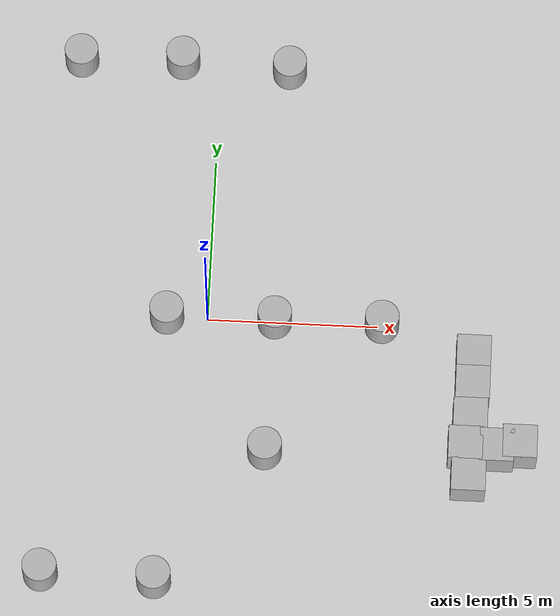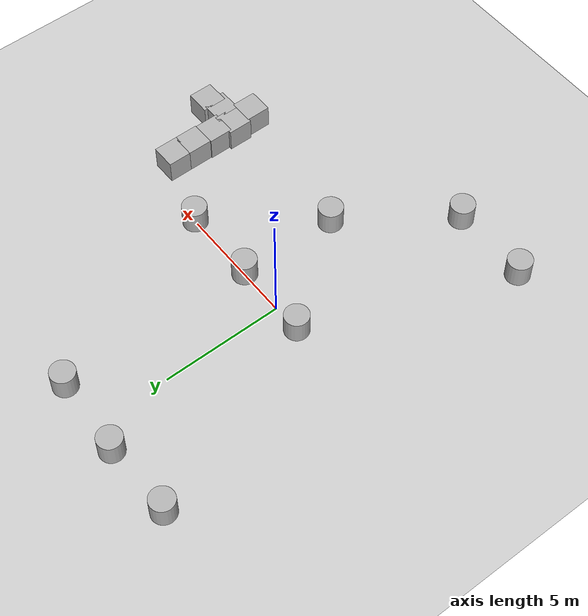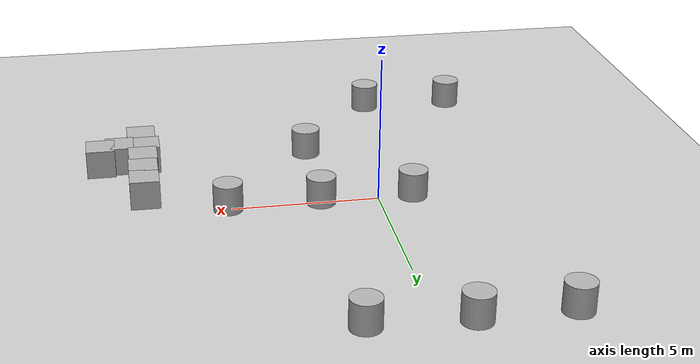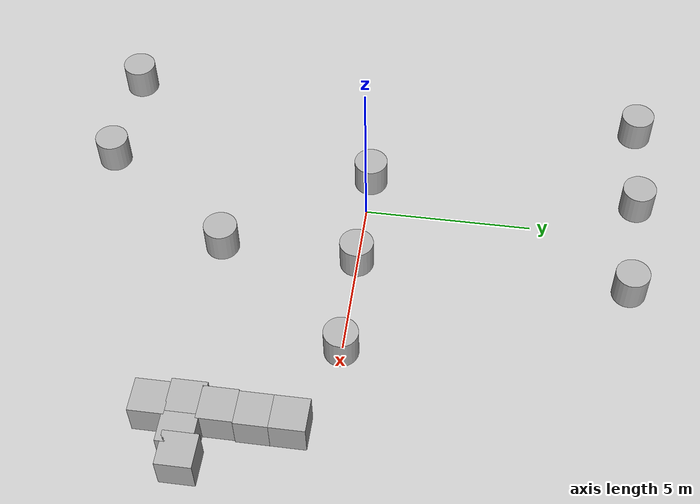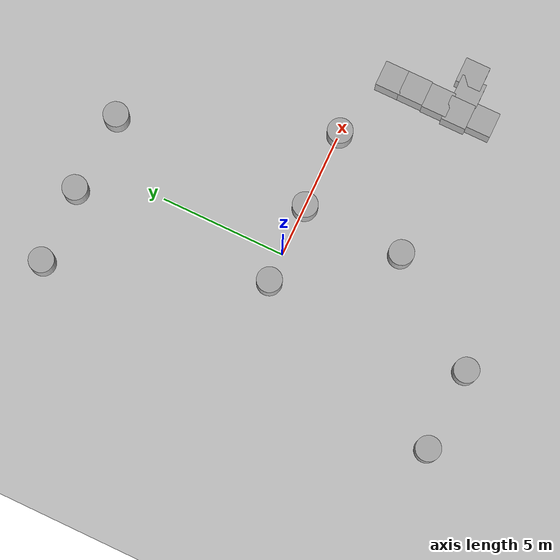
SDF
<sdf version='1.10'>
  <world name='default'>
    <gui fullscreen='false'>
    </gui>
    <gravity>0 0 -9.8000000000000007</gravity>
    <magnetic_field>5.5644999999999998e-06 2.2875799999999999e-05 -4.2388400000000002e-05</magnetic_field>
    <atmosphere type='adiabatic'/>
    <physics type='ode'>
      <max_step_size>0.001</max_step_size>
      <real_time_factor>1</real_time_factor>
      <real_time_update_rate>1000</real_time_update_rate>
    </physics>
    <scene>
      <ambient>0.400000006 0.400000006 0.400000006 1</ambient>
      <background>0.699999988 0.699999988 0.699999988 1</background>
      <shadows>true</shadows>
    </scene>
    <model name='ground_plane'>
      <static>true</static>
      <link name='link'>
        <collision name='collision'>
          <geometry>
            <plane>
              <normal>0 0 1</normal>
              <size>100 100</size>
            </plane>
          </geometry>
          <surface>
            <friction>
              <ode/>
            </friction>
            <bounce/>
            <contact/>
          </surface>
        </collision>
        <visual name='visual'>
          <geometry>
            <plane>
              <normal>0 0 1</normal>
              <size>100 100</size>
            </plane>
          </geometry>
          <material>
            <ambient>0.800000012 0.800000012 0.800000012 1</ambient>
            <diffuse>0.800000012 0.800000012 0.800000012 1</diffuse>
            <specular>0.800000012 0.800000012 0.800000012 1</specular>
          </material>
        </visual>
        <pose>0 0 0 0 0 0</pose>
        <inertial>
          <pose>0 0 0 0 0 0</pose>
          <mass>1</mass>
          <inertia>
            <ixx>1</ixx>
            <ixy>0</ixy>
            <ixz>0</ixz>
            <iyy>1</iyy>
            <iyz>0</iyz>
            <izz>1</izz>
          </inertia>
        </inertial>
        <enable_wind>false</enable_wind>
      </link>
      <pose>0 0 0 0 0 0</pose>
      <self_collide>false</self_collide>
    </model>
    <model name='cylinder'>
      <pose>5.1339255686091745 -0.010688066575636243 0.49999942638036005 -4.8616981091685394e-20 8.1439708289973324e-21 -1.1378218790353826e-20</pose>
      <link name='cylinder_link'>
        <inertial>
          <inertia>
            <ixx>0.14580000000000001</ixx>
            <ixy>0</ixy>
            <ixz>0</ixz>
            <iyy>0.14580000000000001</iyy>
            <iyz>0</iyz>
            <izz>0.125</izz>
          </inertia>
          <mass>1</mass>
          <pose>0 0 0 0 0 0</pose>
        </inertial>
        <collision name='cylinder_collision'>
          <geometry>
            <cylinder>
              <radius>0.5</radius>
              <length>1</length>
            </cylinder>
          </geometry>
          <surface>
            <friction>
              <ode/>
            </friction>
            <bounce/>
            <contact/>
          </surface>
        </collision>
        <visual name='cylinder_visual'>
          <geometry>
            <cylinder>
              <radius>0.5</radius>
              <length>1</length>
            </cylinder>
          </geometry>
          <material>
            <ambient>0.300000012 0.300000012 0.300000012 1</ambient>
            <diffuse>0.699999988 0.699999988 0.699999988 1</diffuse>
            <specular>1 1 1 1</specular>
          </material>
        </visual>
        <pose>0 0 0 0 0 0</pose>
        <enable_wind>false</enable_wind>
      </link>
      <static>true</static>
      <self_collide>false</self_collide>
    </model>
    <model name='cylinder_4'>
      <pose>2.050288219177216 7.9890451619262395 0.49999942638036005 -1.7938851079827487e-19 5.8514255683497105e-21 -3.8353579460513239e-20</pose>
      <link name='cylinder_link'>
        <inertial>
          <inertia>
            <ixx>0.14580000000000001</ixx>
            <ixy>0</ixy>
            <ixz>0</ixz>
            <iyy>0.14580000000000001</iyy>
            <iyz>0</iyz>
            <izz>0.125</izz>
          </inertia>
          <mass>1</mass>
          <pose>0 0 0 0 0 0</pose>
        </inertial>
        <collision name='cylinder_collision'>
          <geometry>
            <cylinder>
              <radius>0.5</radius>
              <length>1</length>
            </cylinder>
          </geometry>
          <surface>
            <friction>
              <ode/>
            </friction>
            <bounce/>
            <contact/>
          </surface>
        </collision>
        <visual name='cylinder_visual'>
          <geometry>
            <cylinder>
              <radius>0.5</radius>
              <length>1</length>
            </cylinder>
          </geometry>
          <material>
            <ambient>0.300000012 0.300000012 0.300000012 1</ambient>
            <diffuse>0.699999988 0.699999988 0.699999988 1</diffuse>
            <specular>1 1 1 1</specular>
          </material>
        </visual>
        <pose>0 0 0 0 0 0</pose>
        <enable_wind>false</enable_wind>
      </link>
      <static>true</static>
      <self_collide>false</self_collide>
    </model>
    <model name='cylinder_6'>
      <pose>1.9812386181717156 -0.020220737731963475 0.49999942638036005 3.8633833097373467e-19 2.4317860879336467e-20 -1.4550531864972856e-20</pose>
      <link name='cylinder_link'>
        <inertial>
          <inertia>
            <ixx>0.14580000000000001</ixx>
            <ixy>0</ixy>
            <ixz>0</ixz>
            <iyy>0.14580000000000001</iyy>
            <iyz>0</iyz>
            <izz>0.125</izz>
          </inertia>
          <mass>1</mass>
          <pose>0 0 0 0 0 0</pose>
        </inertial>
        <collision name='cylinder_collision'>
          <geometry>
            <cylinder>
              <radius>0.5</radius>
              <length>1</length>
            </cylinder>
          </geometry>
          <surface>
            <friction>
              <ode/>
            </friction>
            <bounce/>
            <contact/>
          </surface>
        </collision>
        <visual name='cylinder_visual'>
          <geometry>
            <cylinder>
              <radius>0.5</radius>
              <length>1</length>
            </cylinder>
          </geometry>
          <material>
            <ambient>0.300000012 0.300000012 0.300000012 1</ambient>
            <diffuse>0.699999988 0.699999988 0.699999988 1</diffuse>
            <specular>1 1 1 1</specular>
          </material>
        </visual>
        <pose>0 0 0 0 0 0</pose>
        <enable_wind>false</enable_wind>
      </link>
      <static>true</static>
      <self_collide>false</self_collide>
    </model>
    <model name='cylinder_7'>
      <pose>1.877668399536103 -4.0939006617431941 0.49999942638036005 -1.6633044813193532e-19 -2.97189774269303e-19 2.3076812657648562e-20</pose>
      <link name='cylinder_link'>
        <inertial>
          <inertia>
            <ixx>0.14580000000000001</ixx>
            <ixy>0</ixy>
            <ixz>0</ixz>
            <iyy>0.14580000000000001</iyy>
            <iyz>0</iyz>
            <izz>0.125</izz>
          </inertia>
          <mass>1</mass>
          <pose>0 0 0 0 0 0</pose>
        </inertial>
        <collision name='cylinder_collision'>
          <geometry>
            <cylinder>
              <radius>0.5</radius>
              <length>1</length>
            </cylinder>
          </geometry>
          <surface>
            <friction>
              <ode/>
            </friction>
            <bounce/>
            <contact/>
          </surface>
        </collision>
        <visual name='cylinder_visual'>
          <geometry>
            <cylinder>
              <radius>0.5</radius>
              <length>1</length>
            </cylinder>
          </geometry>
          <material>
            <ambient>0.300000012 0.300000012 0.300000012 1</ambient>
            <diffuse>0.699999988 0.699999988 0.699999988 1</diffuse>
            <specular>1 1 1 1</specular>
          </material>
        </visual>
        <pose>0 0 0 0 0 0</pose>
        <enable_wind>false</enable_wind>
      </link>
      <static>true</static>
      <self_collide>false</self_collide>
    </model>
    <model name='cylinder_9'>
      <pose>-1.1258081009750665 -8.1675772647592879 0.49999942638036005 -8.8186155726113733e-20 3.3683031785694115e-19 -2.6488266237517442e-20</pose>
      <link name='cylinder_link'>
        <inertial>
          <inertia>
            <ixx>0.14580000000000001</ixx>
            <ixy>0</ixy>
            <ixz>0</ixz>
            <iyy>0.14580000000000001</iyy>
            <iyz>0</iyz>
            <izz>0.125</izz>
          </inertia>
          <mass>1</mass>
          <pose>0 0 0 0 0 0</pose>
        </inertial>
        <collision name='cylinder_collision'>
          <geometry>
            <cylinder>
              <radius>0.5</radius>
              <length>1</length>
            </cylinder>
          </geometry>
          <surface>
            <friction>
              <ode/>
            </friction>
            <bounce/>
            <contact/>
          </surface>
        </collision>
        <visual name='cylinder_visual'>
          <geometry>
            <cylinder>
              <radius>0.5</radius>
              <length>1</length>
            </cylinder>
          </geometry>
          <material>
            <ambient>0.300000012 0.300000012 0.300000012 1</ambient>
            <diffuse>0.699999988 0.699999988 0.699999988 1</diffuse>
            <specular>1 1 1 1</specular>
          </material>
        </visual>
        <pose>0 0 0 0 0 0</pose>
        <enable_wind>false</enable_wind>
      </link>
      <static>true</static>
      <self_collide>false</self_collide>
    </model>
    <model name='cylinder_11'>
      <pose>-1.1948498299484551 -0.020219307220488866 0.49999942638036005 4.4863003604792616e-19 3.8006013583344366e-20 3.0475399066543794e-20</pose>
      <link name='cylinder_link'>
        <inertial>
          <inertia>
            <ixx>0.14580000000000001</ixx>
            <ixy>0</ixy>
            <ixz>0</ixz>
            <iyy>0.14580000000000001</iyy>
            <iyz>0</iyz>
            <izz>0.125</izz>
          </inertia>
          <mass>1</mass>
          <pose>0 0 0 0 0 0</pose>
        </inertial>
        <collision name='cylinder_collision'>
          <geometry>
            <cylinder>
              <radius>0.5</radius>
              <length>1</length>
            </cylinder>
          </geometry>
          <surface>
            <friction>
              <ode/>
            </friction>
            <bounce/>
            <contact/>
          </surface>
        </collision>
        <visual name='cylinder_visual'>
          <geometry>
            <cylinder>
              <radius>0.5</radius>
              <length>1</length>
            </cylinder>
          </geometry>
          <material>
            <ambient>0.300000012 0.300000012 0.300000012 1</ambient>
            <diffuse>0.699999988 0.699999988 0.699999988 1</diffuse>
            <specular>1 1 1 1</specular>
          </material>
        </visual>
        <pose>0 0 0 0 0 0</pose>
        <enable_wind>false</enable_wind>
      </link>
      <static>true</static>
      <self_collide>false</self_collide>
    </model>
    <model name='cylinder_13'>
      <pose>-1.1603230049972832 8.1616607068978997 0.49999942638036005 -1.7222844124278922e-19 4.1233518327359799e-19 2.5332280340787763e-20</pose>
      <link name='cylinder_link'>
        <inertial>
          <inertia>
            <ixx>0.14580000000000001</ixx>
            <ixy>0</ixy>
            <ixz>0</ixz>
            <iyy>0.14580000000000001</iyy>
            <iyz>0</iyz>
            <izz>0.125</izz>
          </inertia>
          <mass>1</mass>
          <pose>0 0 0 0 0 0</pose>
        </inertial>
        <collision name='cylinder_collision'>
          <geometry>
            <cylinder>
              <radius>0.5</radius>
              <length>1</length>
            </cylinder>
          </geometry>
          <surface>
            <friction>
              <ode/>
            </friction>
            <bounce/>
            <contact/>
          </surface>
        </collision>
        <visual name='cylinder_visual'>
          <geometry>
            <cylinder>
              <radius>0.5</radius>
              <length>1</length>
            </cylinder>
          </geometry>
          <material>
            <ambient>0.300000012 0.300000012 0.300000012 1</ambient>
            <diffuse>0.699999988 0.699999988 0.699999988 1</diffuse>
            <specular>1 1 1 1</specular>
          </material>
        </visual>
        <pose>0 0 0 0 0 0</pose>
        <enable_wind>false</enable_wind>
      </link>
      <static>true</static>
      <self_collide>false</self_collide>
    </model>
    <model name='cylinder_14'>
      <pose>-4.1983203699951472 8.09261659373872 0.49999942638036005 4.4470444700310609e-19 -5.6174624309786576e-19 -6.2478371277620025e-21</pose>
      <link name='cylinder_link'>
        <inertial>
          <inertia>
            <ixx>0.14580000000000001</ixx>
            <ixy>0</ixy>
            <ixz>0</ixz>
            <iyy>0.14580000000000001</iyy>
            <iyz>0</iyz>
            <izz>0.125</izz>
          </inertia>
          <mass>1</mass>
          <pose>0 0 0 0 0 0</pose>
        </inertial>
        <collision name='cylinder_collision'>
          <geometry>
            <cylinder>
              <radius>0.5</radius>
              <length>1</length>
            </cylinder>
          </geometry>
          <surface>
            <friction>
              <ode/>
            </friction>
            <bounce/>
            <contact/>
          </surface>
        </collision>
        <visual name='cylinder_visual'>
          <geometry>
            <cylinder>
              <radius>0.5</radius>
              <length>1</length>
            </cylinder>
          </geometry>
          <material>
            <ambient>0.300000012 0.300000012 0.300000012 1</ambient>
            <diffuse>0.699999988 0.699999988 0.699999988 1</diffuse>
            <specular>1 1 1 1</specular>
          </material>
        </visual>
        <pose>0 0 0 0 0 0</pose>
        <enable_wind>false</enable_wind>
      </link>
      <static>true</static>
      <self_collide>false</self_collide>
    </model>
    <model name='cylinder_18'>
      <pose>-4.4054651072387996 -8.098530290577159 0.49999942638036005 1.2501544832168666e-19 -9.3177369233964667e-20 5.3720966670632648e-21</pose>
      <link name='cylinder_link'>
        <inertial>
          <inertia>
            <ixx>0.14580000000000001</ixx>
            <ixy>0</ixy>
            <ixz>0</ixz>
            <iyy>0.14580000000000001</iyy>
            <iyz>0</iyz>
            <izz>0.125</izz>
          </inertia>
          <mass>1</mass>
          <pose>0 0 0 0 0 0</pose>
        </inertial>
        <collision name='cylinder_collision'>
          <geometry>
            <cylinder>
              <radius>0.5</radius>
              <length>1</length>
            </cylinder>
          </geometry>
          <surface>
            <friction>
              <ode/>
            </friction>
            <bounce/>
            <contact/>
          </surface>
        </collision>
        <visual name='cylinder_visual'>
          <geometry>
            <cylinder>
              <radius>0.5</radius>
              <length>1</length>
            </cylinder>
          </geometry>
          <material>
            <ambient>0.300000012 0.300000012 0.300000012 1</ambient>
            <diffuse>0.699999988 0.699999988 0.699999988 1</diffuse>
            <specular>1 1 1 1</specular>
          </material>
        </visual>
        <pose>0 0 0 0 0 0</pose>
        <enable_wind>false</enable_wind>
      </link>
      <static>true</static>
      <self_collide>false</self_collide>
    </model>
    <model name='box'>
      <pose>7.8500969000068048 -0.96512653493451728 0.49999999109944532 -2.1188566593249706e-08 -4.6278109983780637e-09 3.6494466884071265e-06</pose>
      <link name='box_link'>
        <inertial>
          <inertia>
            <ixx>0.16666</ixx>
            <ixy>0</ixy>
            <ixz>0</ixz>
            <iyy>0.16666</iyy>
            <iyz>0</iyz>
            <izz>0.16666</izz>
          </inertia>
          <mass>1</mass>
          <pose>0 0 0 0 0 0</pose>
        </inertial>
        <collision name='box_collision'>
          <geometry>
            <box>
              <size>1 1 1</size>
            </box>
          </geometry>
          <surface>
            <friction>
              <ode/>
            </friction>
            <bounce/>
            <contact/>
          </surface>
        </collision>
        <visual name='box_visual'>
          <geometry>
            <box>
              <size>1 1 1</size>
            </box>
          </geometry>
          <material>
            <ambient>0.300000012 0.300000012 0.300000012 1</ambient>
            <diffuse>0.699999988 0.699999988 0.699999988 1</diffuse>
            <specular>1 1 1 1</specular>
          </material>
        </visual>
        <pose>0 0 0 0 0 0</pose>
        <enable_wind>false</enable_wind>
      </link>
      <static>true</static>
      <self_collide>false</self_collide>
    </model>
    <model name='box_0'>
      <pose>7.8500964973328768 -1.9114467382195177 0.49999999113792115 -1.9734873132476847e-08 -4.9368448860601406e-09 9.161348324414428e-06</pose>
      <link name='box_link'>
        <inertial>
          <inertia>
            <ixx>0.16666</ixx>
            <ixy>0</ixy>
            <ixz>0</ixz>
            <iyy>0.16666</iyy>
            <iyz>0</iyz>
            <izz>0.16666</izz>
          </inertia>
          <mass>1</mass>
          <pose>0 0 0 0 0 0</pose>
        </inertial>
        <collision name='box_collision'>
          <geometry>
            <box>
              <size>1 1 1</size>
            </box>
          </geometry>
          <surface>
            <friction>
              <ode/>
            </friction>
            <bounce/>
            <contact/>
          </surface>
        </collision>
        <visual name='box_visual'>
          <geometry>
            <box>
              <size>1 1 1</size>
            </box>
          </geometry>
          <material>
            <ambient>0.300000012 0.300000012 0.300000012 1</ambient>
            <diffuse>0.699999988 0.699999988 0.699999988 1</diffuse>
            <specular>1 1 1 1</specular>
          </material>
        </visual>
        <pose>0 0 0 0 0 0</pose>
        <enable_wind>false</enable_wind>
      </link>
      <static>true</static>
      <self_collide>false</self_collide>
    </model>
    <model name='box_1'>
      <pose>7.8155734011455271 -2.911447018331927 0.49999999087017105 -1.9746361874234063e-08 -6.9029109933035986e-09 9.1898512427392978e-06</pose>
      <link name='box_link'>
        <inertial>
          <inertia>
            <ixx>0.16666</ixx>
            <ixy>0</ixy>
            <ixz>0</ixz>
            <iyy>0.16666</iyy>
            <iyz>0</iyz>
            <izz>0.16666</izz>
          </inertia>
          <mass>1</mass>
          <pose>0 0 0 0 0 0</pose>
        </inertial>
        <collision name='box_collision'>
          <geometry>
            <box>
              <size>1 1 1</size>
            </box>
          </geometry>
          <surface>
            <friction>
              <ode/>
            </friction>
            <bounce/>
            <contact/>
          </surface>
        </collision>
        <visual name='box_visual'>
          <geometry>
            <box>
              <size>1 1 1</size>
            </box>
          </geometry>
          <material>
            <ambient>0.300000012 0.300000012 0.300000012 1</ambient>
            <diffuse>0.699999988 0.699999988 0.699999988 1</diffuse>
            <specular>1 1 1 1</specular>
          </material>
        </visual>
        <pose>0 0 0 0 0 0</pose>
        <enable_wind>false</enable_wind>
      </link>
      <static>true</static>
      <self_collide>false</self_collide>
    </model>
    <model name='box_2'>
      <pose>7.7006347865940903 -3.7873453237529029 0.49999999885061613 3.4512271372551198e-08 -2.9404607471253356e-08 1.1032620058495887e-05</pose>
      <link name='box_link'>
        <inertial>
          <inertia>
            <ixx>0.16666</ixx>
            <ixy>0</ixy>
            <ixz>0</ixz>
            <iyy>0.16666</iyy>
            <iyz>0</iyz>
            <izz>0.16666</izz>
          </inertia>
          <mass>1</mass>
          <pose>0 0 0 0 0 0</pose>
        </inertial>
        <collision name='box_collision'>
          <geometry>
            <box>
              <size>1 1 1</size>
            </box>
          </geometry>
          <surface>
            <friction>
              <ode/>
            </friction>
            <bounce/>
            <contact/>
          </surface>
        </collision>
        <visual name='box_visual'>
          <geometry>
            <box>
              <size>1 1 1</size>
            </box>
          </geometry>
          <material>
            <ambient>0.300000012 0.300000012 0.300000012 1</ambient>
            <diffuse>0.699999988 0.699999988 0.699999988 1</diffuse>
            <specular>1 1 1 1</specular>
          </material>
        </visual>
        <pose>0 0 0 0 0 0</pose>
        <enable_wind>false</enable_wind>
      </link>
      <static>true</static>
      <self_collide>false</self_collide>
    </model>
    <model name='box_3'>
      <pose>8.610181585482426 -3.8210975244992822 0.49999999181941485 2.0996102970857204e-08 9.9341021673129532e-09 2.2582172392895855e-05</pose>
      <link name='box_link'>
        <inertial>
          <inertia>
            <ixx>0.16666</ixx>
            <ixy>0</ixy>
            <ixz>0</ixz>
            <iyy>0.16666</iyy>
            <iyz>0</iyz>
            <izz>0.16666</izz>
          </inertia>
          <mass>1</mass>
          <pose>0 0 0 0 0 0</pose>
        </inertial>
        <collision name='box_collision'>
          <geometry>
            <box>
              <size>1 1 1</size>
            </box>
          </geometry>
          <surface>
            <friction>
              <ode/>
            </friction>
            <bounce/>
            <contact/>
          </surface>
        </collision>
        <visual name='box_visual'>
          <geometry>
            <box>
              <size>1 1 1</size>
            </box>
          </geometry>
          <material>
            <ambient>0.300000012 0.300000012 0.300000012 1</ambient>
            <diffuse>0.699999988 0.699999988 0.699999988 1</diffuse>
            <specular>1 1 1 1</specular>
          </material>
        </visual>
        <pose>0 0 0 0 0 0</pose>
        <enable_wind>false</enable_wind>
      </link>
      <static>true</static>
      <self_collide>false</self_collide>
    </model>
    <model name='box_4'>
      <pose>9.2769181850834528 -3.6796383627670641 0.49999999098543541 3.0140318943145349e-09 2.0760155480049651e-08 2.3533450738124864e-05</pose>
      <link name='box_link'>
        <inertial>
          <inertia>
            <ixx>0.16666</ixx>
            <ixy>0</ixy>
            <ixz>0</ixz>
            <iyy>0.16666</iyy>
            <iyz>0</iyz>
            <izz>0.16666</izz>
          </inertia>
          <mass>1</mass>
          <pose>0 0 0 0 0 0</pose>
        </inertial>
        <collision name='box_collision'>
          <geometry>
            <box>
              <size>1 1 1</size>
            </box>
          </geometry>
          <surface>
            <friction>
              <ode/>
            </friction>
            <bounce/>
            <contact/>
          </surface>
        </collision>
        <visual name='box_visual'>
          <geometry>
            <box>
              <size>1 1 1</size>
            </box>
          </geometry>
          <material>
            <ambient>0.300000012 0.300000012 0.300000012 1</ambient>
            <diffuse>0.699999988 0.699999988 0.699999988 1</diffuse>
            <specular>1 1 1 1</specular>
          </material>
        </visual>
        <pose>0 0 0 0 0 0</pose>
        <enable_wind>false</enable_wind>
      </link>
      <static>true</static>
      <self_collide>false</self_collide>
    </model>
    <model name='box_5'>
      <pose>7.8155719884965729 -4.76074423675428 0.49999999030471204 1.9389137010154674e-08 7.9832568878936441e-10 -2.5144781563995219e-06</pose>
      <link name='box_link'>
        <inertial>
          <inertia>
            <ixx>0.16666</ixx>
            <ixy>0</ixy>
            <ixz>0</ixz>
            <iyy>0.16666</iyy>
            <iyz>0</iyz>
            <izz>0.16666</izz>
          </inertia>
          <mass>1</mass>
          <pose>0 0 0 0 0 0</pose>
        </inertial>
        <collision name='box_collision'>
          <geometry>
            <box>
              <size>1 1 1</size>
            </box>
          </geometry>
          <surface>
            <friction>
              <ode/>
            </friction>
            <bounce/>
            <contact/>
          </surface>
        </collision>
        <visual name='box_visual'>
          <geometry>
            <box>
              <size>1 1 1</size>
            </box>
          </geometry>
          <material>
            <ambient>0.300000012 0.300000012 0.300000012 1</ambient>
            <diffuse>0.699999988 0.699999988 0.699999988 1</diffuse>
            <specular>1 1 1 1</specular>
          </material>
        </visual>
        <pose>0 0 0 0 0 0</pose>
        <enable_wind>false</enable_wind>
      </link>
      <static>true</static>
      <self_collide>false</self_collide>
    </model>
    <light name='sun' type='directional'>
      <pose>0 0 10 0 0 0</pose>
      <cast_shadows>true</cast_shadows>
      <intensity>1</intensity>
      <direction>-0.5 0.10000000000000001 -0.90000000000000002</direction>
      <diffuse>0.800000012 0.800000012 0.800000012 1</diffuse>
      <specular>0.200000003 0.200000003 0.200000003 1</specular>
      <attenuation>
        <range>1000</range>
        <linear>0.01</linear>
        <constant>0.90000000000000002</constant>
        <quadratic>0.001</quadratic>
      </attenuation>
      <spot>
        <inner_angle>0</inner_angle>
        <outer_angle>0</outer_angle>
        <falloff>0</falloff>
      </spot>
    </light>
  </world>
</sdf>
